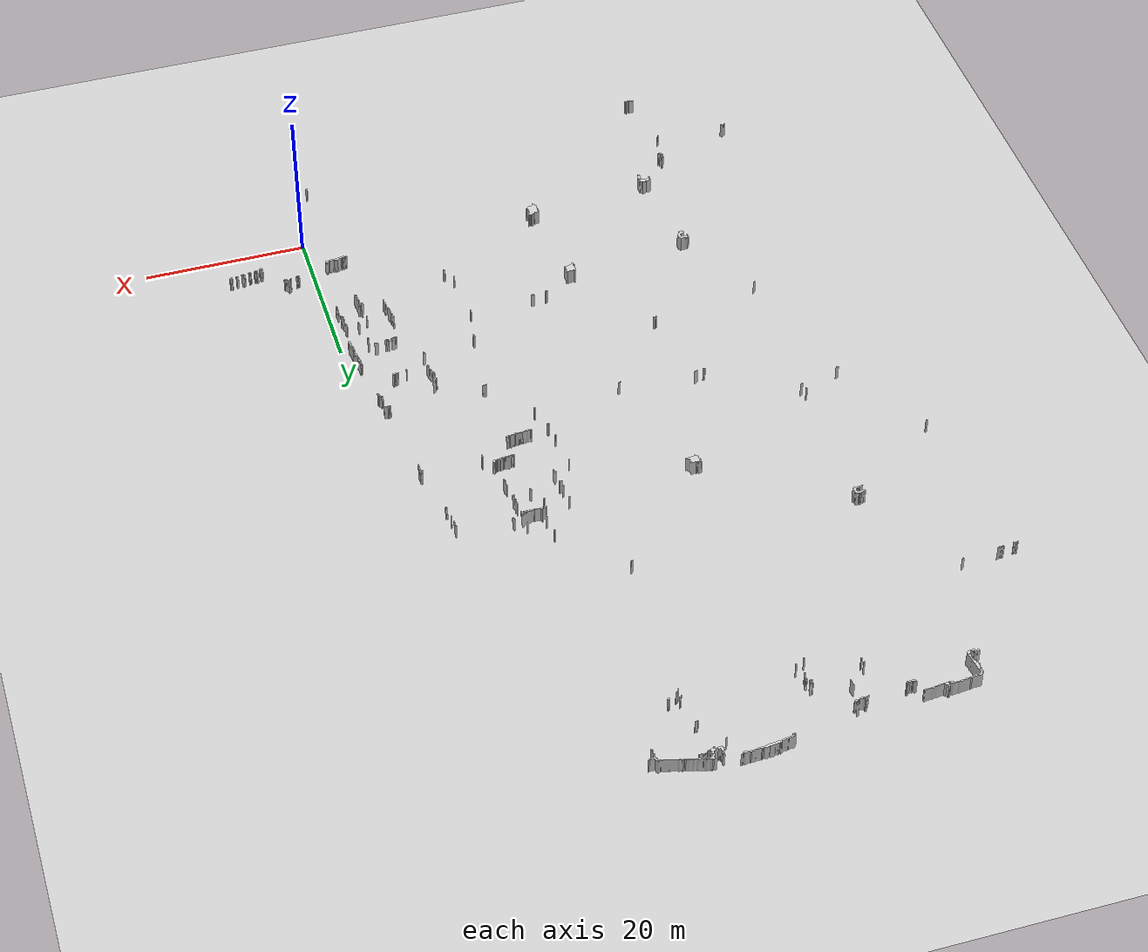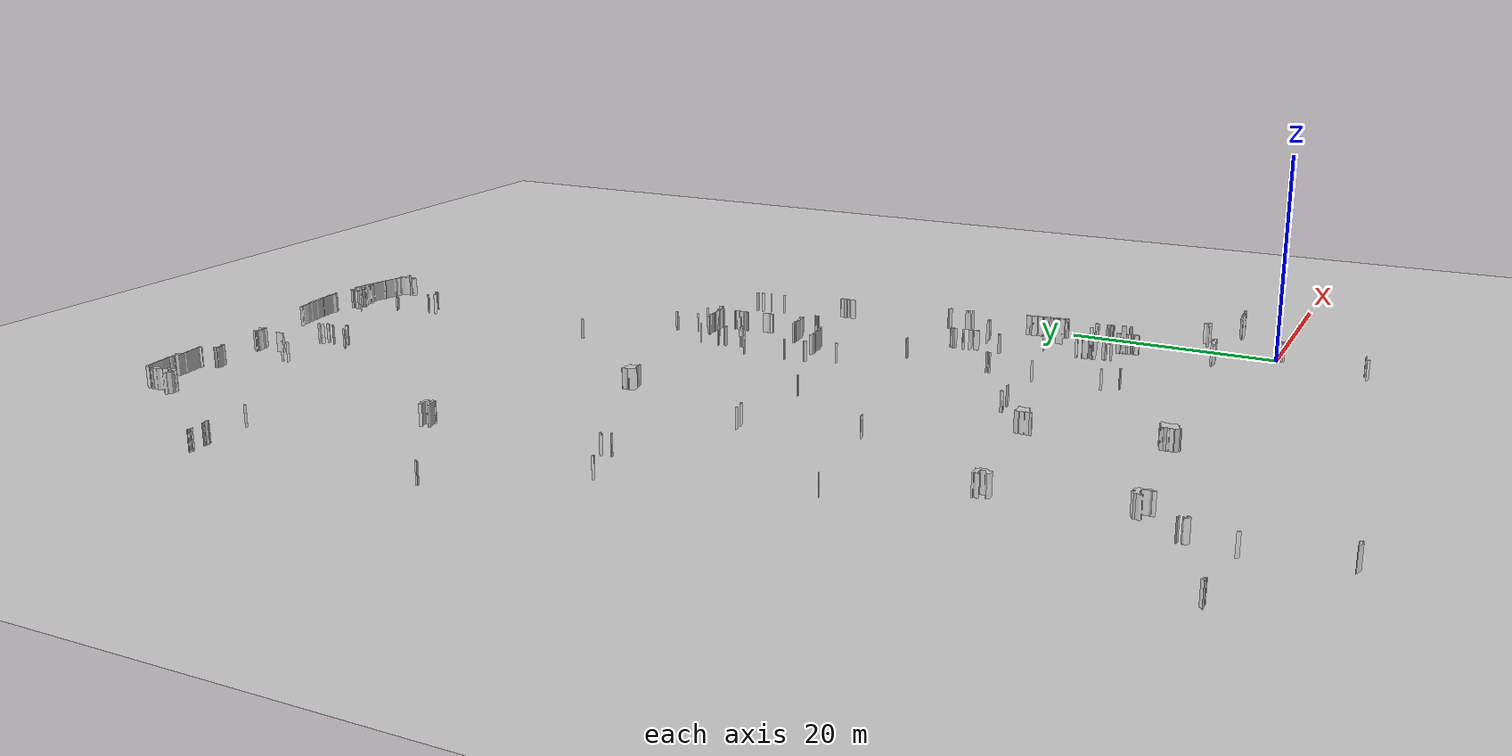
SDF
<?xml version="1.0" ?>
<sdf version="1.6">
  <world name="default">
    <include><uri>model://sun</uri></include>
    <include><uri>model://ground_plane</uri></include>

    <!-- 从用户地图挤出的墙 -->
    <model name="map_walls">
      <static>true</static>
      <link name="walls">
        <collision name="collision">
          <geometry><mesh><uri>file:///home/hhl/Desktop/plan/ros2-patrol-robot-nav2/src/fishbot_description/world/map_walls.stl</uri></mesh></geometry>
        </collision>
        <visual name="visual">
          <geometry><mesh><uri>file:///home/hhl/Desktop/plan/ros2-patrol-robot-nav2/src/fishbot_description/world/map_walls.stl</uri></mesh></geometry>
          <material><ambient>0.8 0.8 0.8 1</ambient></material>
        </visual>
      </link>
    </model>
  </world>
</sdf>
